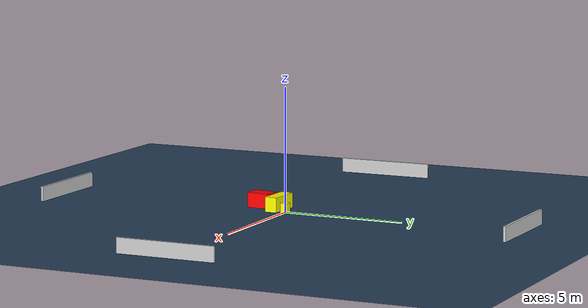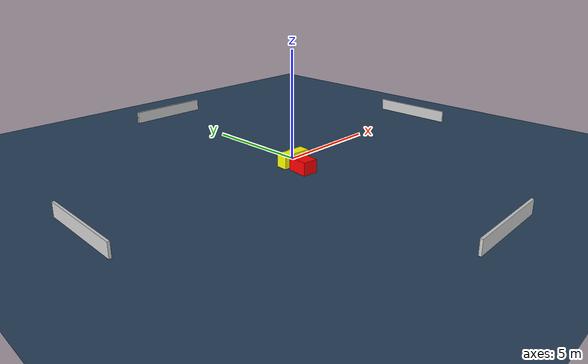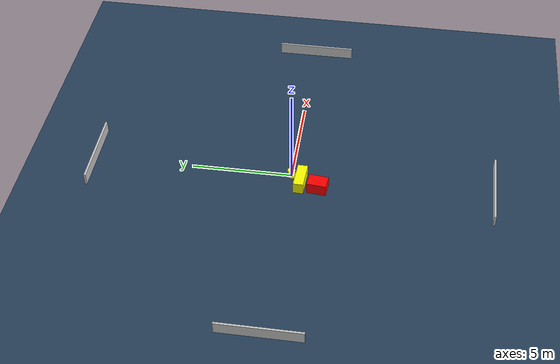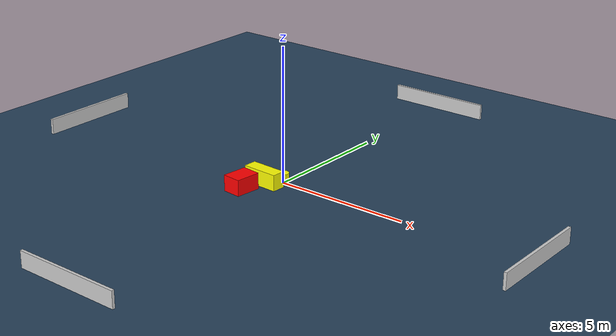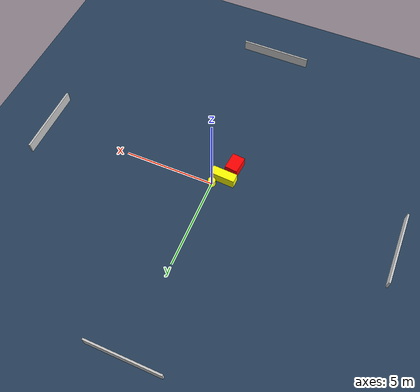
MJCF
<?xml version="1.0" ?>
<mujoco model="generated_environment">
  <option timestep="0.01" integrator="RK4" cone="elliptic"/>
  <default>
    <geom density="1"/>
  </default>
  <asset>
    <texture builtin="gradient" height="3072" name="skybox" rgb1="0.3 0.5 0.7" rgb2="0 0 0" type="skybox" width="512"/>
    <texture builtin="checker" height="300" name="groundplane" rgb1="0.2 0.3 0.4" rgb2="0.1 0.2 0.3" type="2d" width="300"/>
    <material name="groundplane" reflectance="0.2" texrepeat="5 5" texture="groundplane"/>
  </asset>
  <worldbody>
    <light dir="0 0 -1" directional="true" pos="0 0 1.5"/>
    <geom condim="3" friction="0.5 0.005 0.001" material="groundplane" name="floor" pos="0 0 0" size="0 0 0.05" type="plane"/>
    <body name="walls">
      <geom name="wall_1" condim="4" pos="-10.0 0.0 0.3" rgba="0.800000011920929 0.800000011920929 0.800000011920929 1.0" size="0.05 2.0 0.3" type="box"/>
      <geom name="wall_2" condim="4" pos="10.0 0.0 0.3" rgba="0.800000011920929 0.800000011920929 0.800000011920929 1.0" size="0.05 2.0 0.3" type="box"/>
      <geom name="wall_3" condim="4" pos="0.0 -10.0 0.3" rgba="0.800000011920929 0.800000011920929 0.800000011920929 1.0" size="2.0 0.05 0.3" type="box"/>
      <geom name="wall_4" condim="4" pos="0.0 10.0 0.3" rgba="0.800000011920929 0.800000011920929 0.800000011920929 1.0" size="2.0 0.05 0.3" type="box"/>
    </body>
    <body name="robot">
      <joint name="joint_x" type="slide" pos="0 0 0" axis="1 0 0"/>
      <joint name="joint_y" type="slide" pos="0 0 0" axis="0 1 0"/>
      <geom name="robot" type="cylinder" pos="0.0 0.0 0.2" size="0.2 0.2 0.0" mass="5.0" friction="1.0 0.005 0.0001" condim="4" rgba="1.0 1.0 0.0 1.0"/>
    </body>
    <body name="obstacle_1_movable">
      <geom name="obstacle_1_movable" condim="4" pos="-0.46437696313713983 -0.5046728961988574 0.3" euler="0 0 357.2102005232734" friction="0.0 0.005 0.001" rgba="1.0 1.0 0.0 1.0" size="0.6873158883969112 0.24928256716293457 0.3" type="box" mass="0.1"/>
      <joint type="free"/>
    </body>
    <body name="obstacle_2_static">
      <geom name="obstacle_2_static" condim="4" pos="-0.754374283325437 -1.386905555529959 0.3" euler="0 0 353.9112768500094" friction="0.0 0.005 0.001" rgba="1.0 0.0 0.0 1.0" size="0.35135682606046426 0.4777111954830547 0.3" type="box"/>
    </body>
  </worldbody>
  <actuator>
    <motor name="actuator_x" joint="joint_x" gear="1" ctrlrange="-1 1"/>
    <motor name="actuator_y" joint="joint_y" gear="1" ctrlrange="-1 1"/>
  </actuator>
</mujoco>
